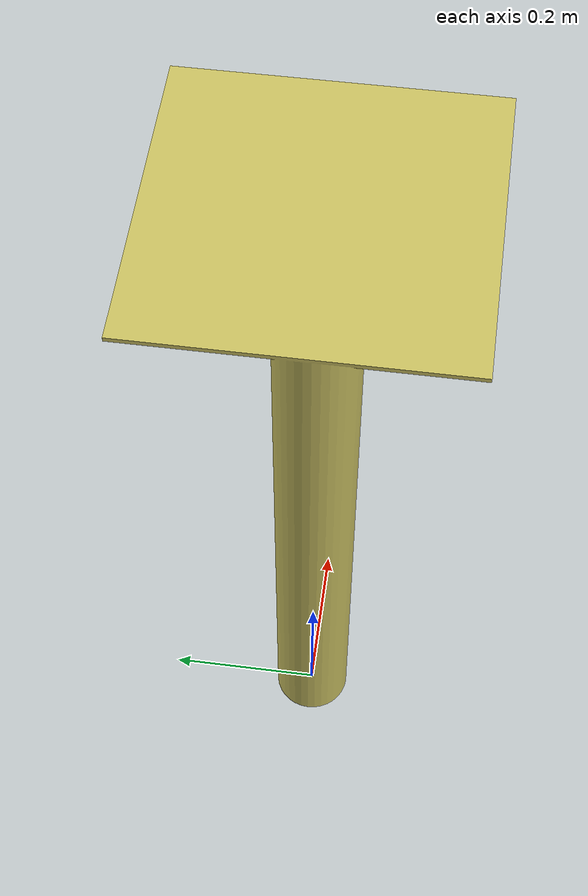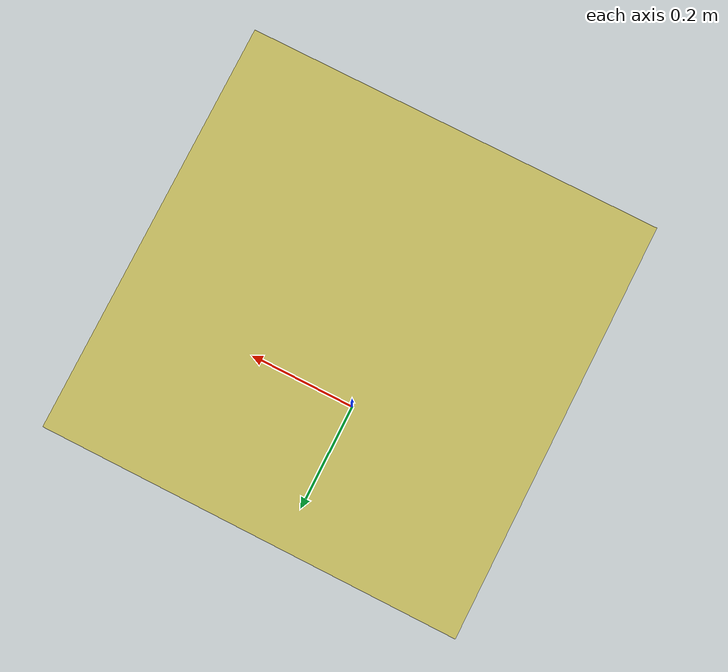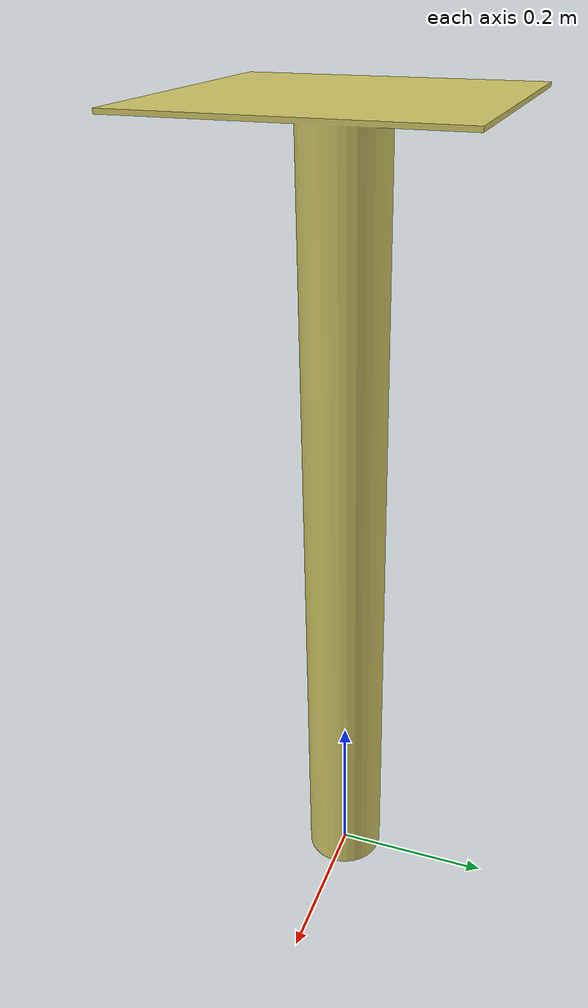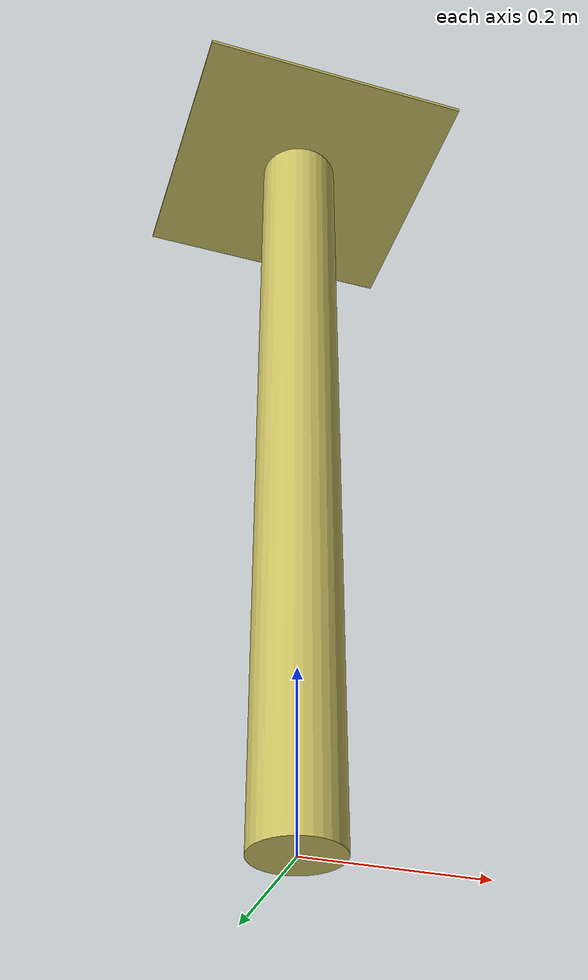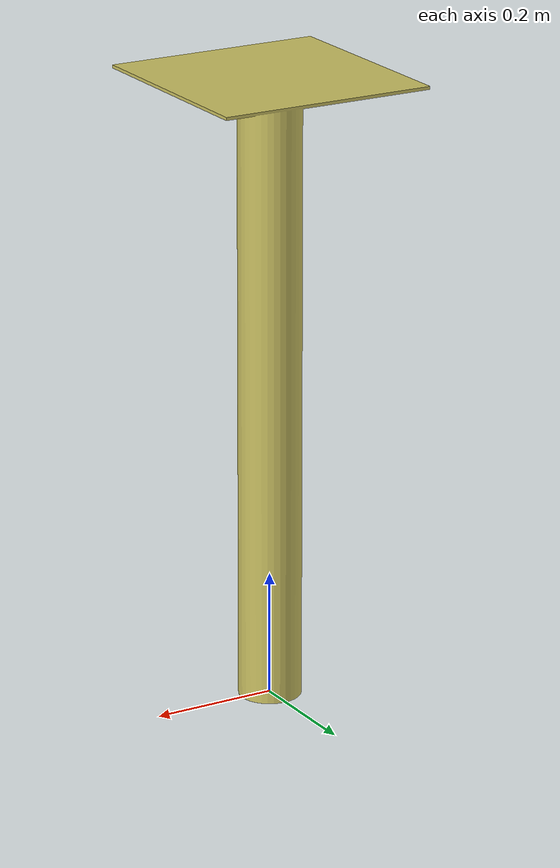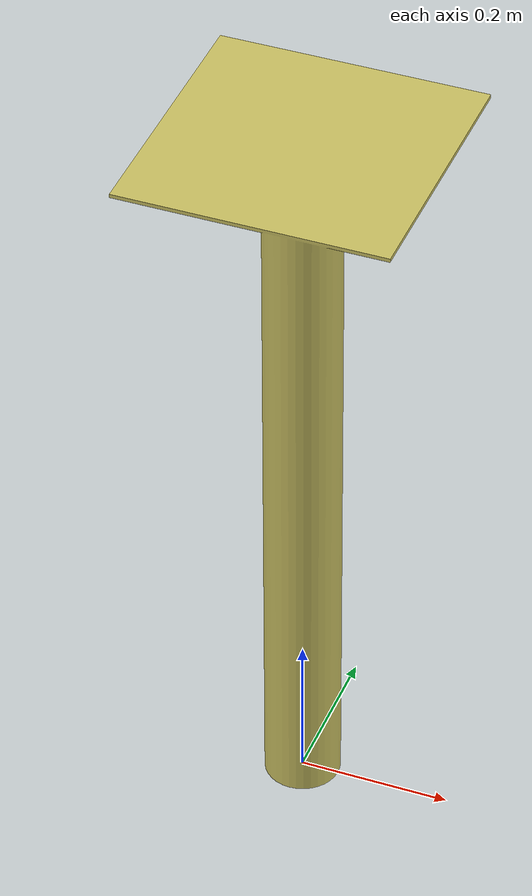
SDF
<?xml version="1.0"?>
<sdf version="1.6">
  <model name="task3_35_x_35">
    <pose>0 0 0 0 0 0</pose>
    <static>true</static>
    <link name="link">

      <!-- Visualización del modelo -->
      <visual name="visual">
        <geometry>
          <mesh>
            <uri>model://task3_35_x_35/meshes/task3_35_x_35.dae</uri>
            <scale>1 1 1</scale>
          </mesh>
        </geometry>
      </visual>

      <!-- Colisión usando el mismo modelo DAE -->
      <collision name="collision">
        <geometry>
          <mesh>
            <uri>model://task3_35_x_35/meshes/task3_35_x_35.dae</uri>
            <scale>1 1 1</scale>
          </mesh>
        </geometry>
      </collision>

    </link>
  </model>
</sdf>
